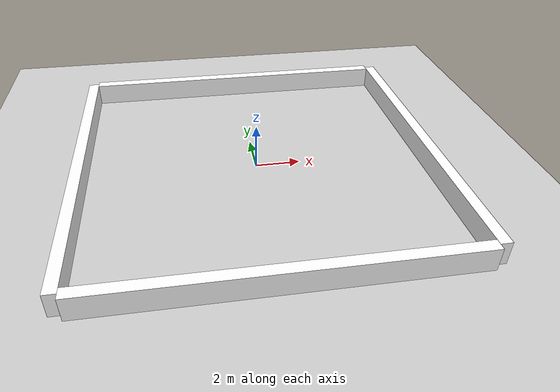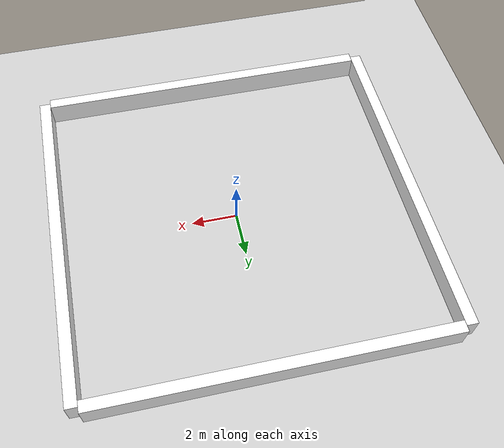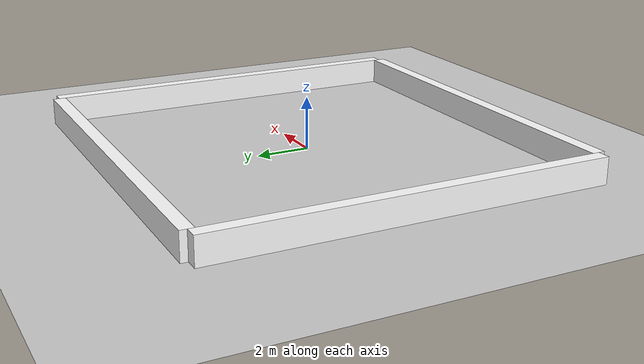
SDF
<?xml version="1.0" ?>
<sdf version="1.8">
    <world name="pioneer_world">
        <physics name="1ms" type="ignored">
            <max_step_size>0.001</max_step_size>
            <real_time_factor>1.0</real_time_factor>
        </physics>
        <plugin
            filename="ignition-gazebo-physics-system"
            name="ignition::gazebo::systems::Physics">
        </plugin>
        <plugin
            filename="ignition-gazebo-user-commands-system"
            name="ignition::gazebo::systems::UserCommands">
        </plugin>
        <plugin
            filename="ignition-gazebo-scene-broadcaster-system"
            name="ignition::gazebo::systems::SceneBroadcaster">
        </plugin>
        <plugin filename="ignition-gazebo-imu-system"
                name="ignition::gazebo::systems::Imu">
        </plugin>
        <plugin filename="ignition-gazebo-sensors-system"
                name="ignition::gazebo::systems::Sensors">
            <render_engine>ogre2</render_engine>
        </plugin>
        <plugin filename="ignition-gazebo-contact-system"
                name="ignition::gazebo::systems::Contact">
        </plugin>

        <light type="directional" name="sun">
                <cast_shadows>true</cast_shadows>
                <pose>0 0 10 0 0 0</pose>
                <diffuse>0.8 0.8 0.8 1</diffuse>
                <specular>0.2 0.2 0.2 1</specular>
                <attenuation>
                    <range>1000</range>
                    <constant>0.9</constant>
                    <linear>0.01</linear>
                    <quadratic>0.001</quadratic>
                </attenuation>
                <direction>-0.5 0.1 -0.9</direction>
            </light>

            <model name="ground_plane">
                <static>true</static>
                <link name="link">
                    <collision name="collision">
                    <geometry>
                        <plane>
                        <normal>0 0 1</normal>
                        </plane>
                    </geometry>
                    </collision>
                    <visual name="visual">
                    <geometry>
                        <plane>
                        <normal>0 0 1</normal>
                        <size>100 100</size>
                        </plane>
                    </geometry>
                    <material>
                        <ambient>0.8 0.8 0.8 1</ambient>
                        <diffuse>0.8 0.8 0.8 1</diffuse>
                        <specular>0.8 0.8 0.8 1</specular>
                    </material>
                    </visual>
                </link>
            </model>

            <model name='wall_1'>
                <static>true</static>
                <pose>7.75 0 0 0 0 0</pose><!--pose relative to the world-->
                <link name='box'>
                    <pose/>
                    <inertial> <!--inertial properties of the link mass, inertia matix-->
                        <mass>1.14395</mass>
                        <inertia>
                            <ixx>9.532917</ixx>
                            <ixy>0</ixy>
                            <ixz>0</ixz>
                            <iyy>0.023832</iyy>
                            <iyz>0</iyz>
                            <izz>9.556749</izz>
                        </inertia>
                    </inertial>
                    <visual name='visual'>
                        <geometry>
                            <box>
                                <size>0.5 15.0 2.0</size>
                            </box>
                        </geometry>
                        <!--let's add color to our link-->
                        <material>
                            <ambient>1.0 1.0 1.0 1</ambient>
                            <diffuse>1.0 1.0 1.0 1</diffuse>
                            <specular>1.0 1.0 1.0 1</specular>
                        </material>
                    </visual>
                    <collision name='collision'> <!--todo: describe why we need the collision-->
                        <geometry>
                            <box>
                                <size>0.5 15.0 2.0</size>
                            </box>
                        </geometry>
                    </collision>
                    <sensor name='sensor_contact' type='contact'>
                        <contact>
                            <collision>collision</collision>
                        </contact>
                    </sensor>
                </link>
                <plugin filename="ignition-gazebo-touchplugin-system"
                        name="ignition::gazebo::systems::TouchPlugin">
                    <target>vehicle_blue</target>
                    <namespace>wall</namespace>
                    <time>0.001</time>
                    <enabled>true</enabled>
                </plugin>
            </model>

            <model name='wall_2'>
                <static>true</static>
                <pose>-7.75 0 0 0 0 0</pose><!--pose relative to the world-->
                <link name='box'>
                    <pose/>
                    <inertial> <!--inertial properties of the link mass, inertia matix-->
                        <mass>1.14395</mass>
                        <inertia>
                            <ixx>9.532917</ixx>
                            <ixy>0</ixy>
                            <ixz>0</ixz>
                            <iyy>0.023832</iyy>
                            <iyz>0</iyz>
                            <izz>9.556749</izz>
                        </inertia>
                    </inertial>
                    <visual name='visual'>
                        <geometry>
                            <box>
                                <size>0.5 15.0 2.0</size>
                            </box>
                        </geometry>
                        <!--let's add color to our link-->
                        <material>
                            <ambient>1.0 1.0 1.0 1</ambient>
                            <diffuse>1.0 1.0 1.0 1</diffuse>
                            <specular>1.0 1.0 1.0 1</specular>
                        </material>
                    </visual>
                    <collision name='collision'> <!--todo: describe why we need the collision-->
                        <geometry>
                            <box>
                                <size>0.5 15.0 2.0</size>
                            </box>
                        </geometry>
                    </collision>
                    <sensor name='sensor_contact' type='contact'>
                        <contact>
                            <collision>collision</collision>
                        </contact>
                    </sensor>
                </link>
                <plugin filename="ignition-gazebo-touchplugin-system"
                        name="ignition::gazebo::systems::TouchPlugin">
                    <target>vehicle_blue</target>
                    <namespace>wall</namespace>
                    <time>0.001</time>
                    <enabled>true</enabled>
                </plugin>
            </model>

            <model name='wall_3'>
                <static>true</static>
                <pose>0 7.5 0 0 0 1.57</pose><!--pose relative to the world-->
                <link name='box'>
                    <pose/>
                    <inertial> <!--inertial properties of the link mass, inertia matix-->
                        <mass>1.14395</mass>
                        <inertia>
                            <ixx>9.532917</ixx>
                            <ixy>0</ixy>
                            <ixz>0</ixz>
                            <iyy>0.023832</iyy>
                            <iyz>0</iyz>
                            <izz>9.556749</izz>
                        </inertia>
                    </inertial>
                    <visual name='visual'>
                        <geometry>
                            <box>
                                <size>0.5 15.0 2.0</size>
                            </box>
                        </geometry>
                        <!--let's add color to our link-->
                        <material>
                            <ambient>1.0 1.0 1.0 1</ambient>
                            <diffuse>1.0 1.0 1.0 1</diffuse>
                            <specular>1.0 1.0 1.0 1</specular>
                        </material>
                    </visual>
                    <collision name='collision'> <!--todo: describe why we need the collision-->
                        <geometry>
                            <box>
                                <size>0.5 15.0 2.0</size>
                            </box>
                        </geometry>
                    </collision>
                    <sensor name='sensor_contact' type='contact'>
                        <contact>
                            <collision>collision</collision>
                        </contact>
                    </sensor>
                </link>
                <plugin filename="ignition-gazebo-touchplugin-system"
                        name="ignition::gazebo::systems::TouchPlugin">
                    <target>vehicle_blue</target>
                    <namespace>wall</namespace>
                    <time>0.001</time>
                    <enabled>true</enabled>
                </plugin>
            </model>

            <model name='wall_4'>
                <static>true</static>
                <pose>0 -7.5 0 0 0 1.57</pose><!--pose relative to the world-->
                <link name='box'>
                    <pose/>
                    <inertial> <!--inertial properties of the link mass, inertia matix-->
                        <mass>1.14395</mass>
                        <inertia>
                            <ixx>9.532917</ixx>
                            <ixy>0</ixy>
                            <ixz>0</ixz>
                            <iyy>0.023832</iyy>
                            <iyz>0</iyz>
                            <izz>9.556749</izz>
                        </inertia>
                    </inertial>
                    <visual name='visual'>
                        <geometry>
                            <box>
                                <size>0.5 15.0 2.0</size>
                            </box>
                        </geometry>
                        <!--let's add color to our link-->
                        <material>
                            <ambient>1.0 1.0 1.0 1</ambient>
                            <diffuse>1.0 1.0 1.0 1</diffuse>
                            <specular>1.0 1.0 1.0 1</specular>
                        </material>
                    </visual>
                    <collision name='collision'> <!--todo: describe why we need the collision-->
                        <geometry>
                            <box>
                                <size>0.5 15.0 2.0</size>
                            </box>
                        </geometry>
                    </collision>
                    <sensor name='sensor_contact' type='contact'>
                        <contact>
                            <collision>collision</collision>
                        </contact>
                    </sensor>
                </link>
                <plugin filename="ignition-gazebo-touchplugin-system"
                        name="ignition::gazebo::systems::TouchPlugin">
                    <target>vehicle_blue</target>
                    <namespace>wall</namespace>
                    <time>0.001</time>
                    <enabled>true</enabled>
                </plugin>
            </model>

    </world>
</sdf>
